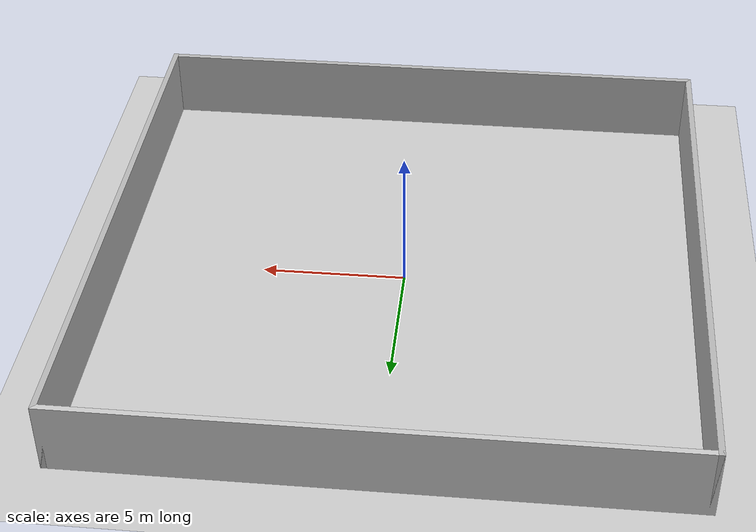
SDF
<sdf version="1.6">
 <world name="room_20x20">
  <physics type="ode"><max_step_size>0.01</max_step_size></physics>
  <model name="ground_plane">
   <static>true</static>
   <link name="link">
    <collision name="collision">
     <geometry><plane><normal>0 0 1</normal><size>100 100</size></plane></geometry>
    </collision>
    <visual name="visual">
     <geometry><plane><normal>0 0 1</normal><size>100 100</size></plane></geometry>
     <material><ambient>0.8 0.8 0.8 1</ambient><diffuse>0.8 0.8 0.8 1</diffuse></material>
    </visual>
   </link>
  </model>
  <model name="wall_north">
   <static>true</static>
   <link name="link">
    <pose>0 10.1 1.25 0 0 0</pose>
    <collision name="collision"><geometry><box><size>20.4 0.2 2.5</size></box></geometry></collision>
    <visual name="visual">
     <geometry><box><size>20.4 0.2 2.5</size></box></geometry>
     <material><ambient>0.7 0.7 0.7 1</ambient><diffuse>0.8 0.8 0.8 1</diffuse></material>
    </visual>
   </link>
  </model>
  <model name="wall_south">
   <static>true</static>
   <link name="link">
    <pose>0 -10.1 1.25 0 0 0</pose>
    <collision name="collision"><geometry><box><size>20.4 0.2 2.5</size></box></geometry></collision>
    <visual name="visual"><geometry><box><size>20.4 0.2 2.5</size></box></geometry></visual>
   </link>
  </model>
  <model name="wall_east">
   <static>true</static>
   <link name="link">
    <pose>10.1 0 1.25 0 0 0</pose>
    <collision name="collision"><geometry><box><size>0.2 20.4 2.5</size></box></geometry></collision>
    <visual name="visual"><geometry><box><size>0.2 20.4 2.5</size></box></geometry></visual>
   </link>
  </model>
  <model name="wall_west">
   <static>true</static>
   <link name="link">
    <pose>-10.1 0 1.25 0 0 0</pose>
    <collision name="collision"><geometry><box><size>0.2 20.4 2.5</size></box></geometry></collision>
    <visual name="visual"><geometry><box><size>0.2 20.4 2.5</size></box></geometry></visual>
   </link>
  </model>
  <light type="directional" name="sun">
   <pose>0 0 10 0 0 0</pose>
   <diffuse>0.8 0.8 0.8 1</diffuse>
   <specular>0.2 0.2 0.2 1</specular>
   <attenuation>
    <range>1000</range>
    <constant>0.9</constant>
    <linear>0.01</linear>
    <quadratic>0.001</quadratic>
   </attenuation>
   <direction>-0.5 0.1 -0.9</direction>
  </light>
 </world>
</sdf>
